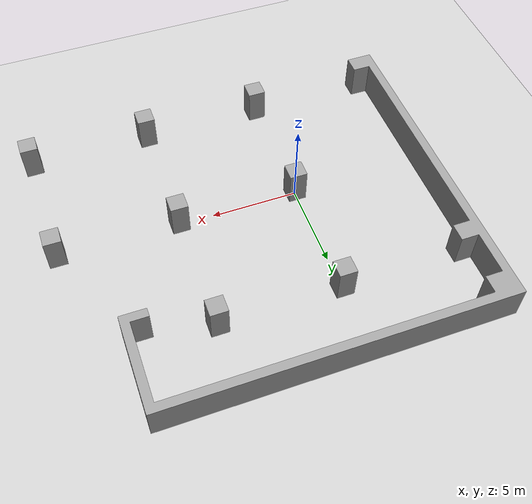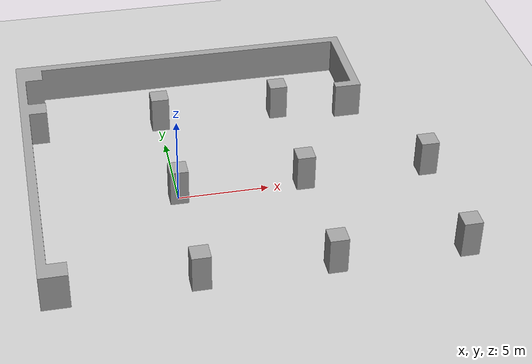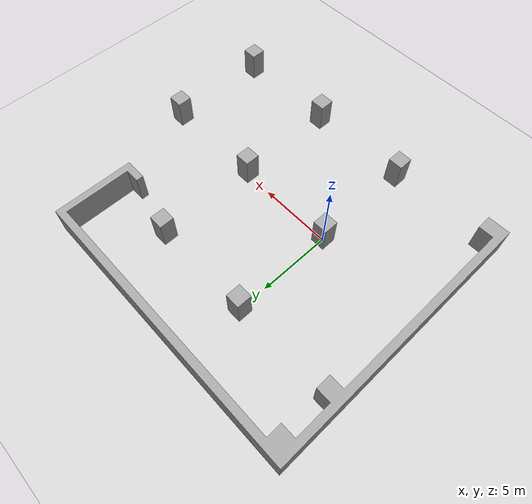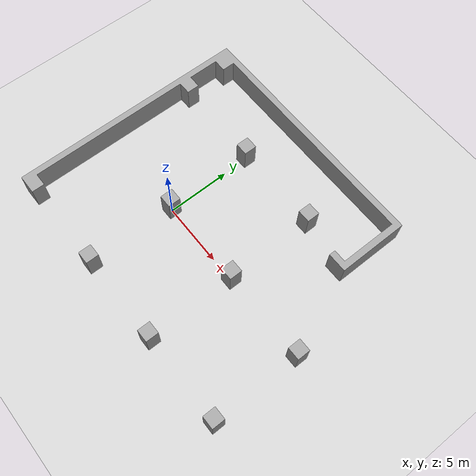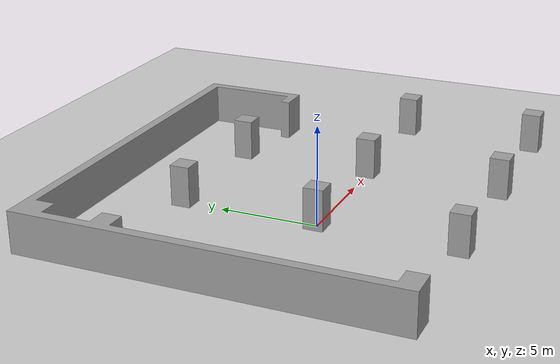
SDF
<?xml version="1.0"?>
<sdf version="1.6">
  <world name="default">

    <include>
      <uri>model://ground_plane</uri>
    </include>

    <include>
      <uri>model://sun</uri>
    </include>

    <scene>
      <shadows>false</shadows>
    </scene>

    <gui fullscreen='0'>
      <camera name='user_camera'>
        <pose frame=''>0.319654 -0.235002 9.29441 0 1.5138 0.009599</pose>
        <view_controller>orbit</view_controller>
        <projection_type>perspective</projection_type>
      </camera>
    </gui>

    <physics type="ode">
      <real_time_update_rate>1000.0</real_time_update_rate>
      <max_step_size>0.001</max_step_size>
      <real_time_factor>1</real_time_factor>
      <ode>
        <solver>
          <type>quick</type>
          <iters>150</iters>
          <precon_iters>0</precon_iters>
          <sor>1.400000</sor>
          <use_dynamic_moi_rescaling>1</use_dynamic_moi_rescaling>
        </solver>
        <constraints>
          <cfm>0.00001</cfm>
          <erp>0.2</erp>
          <contact_max_correcting_vel>2000.000000</contact_max_correcting_vel>
          <contact_surface_layer>0.01000</contact_surface_layer>
        </constraints>
      </ode>
    </physics>

    <model name="shibuya_seibu">
      <static>1</static>
      <include>
        <uri>model://shibuya_seibu</uri>
      </include>
    </model>

  </world>
</sdf>

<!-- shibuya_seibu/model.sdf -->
<sdf version="1.6">
  <model name="measurement">
    <static>true</static>
    <link name="link">
      <collision name="collision">
        <geometry>
          <mesh>
            <scale>1 1 1</scale>
            <uri>model://shibuya_seibu/meshes/shibuya_seibu.stl</uri>
          </mesh>
        </geometry>
        <surface>
          <friction>
            <ode>
              <mu>1.2</mu>
              <mu2>1.2</mu2>
            </ode>
          </friction>
        </surface>
      </collision>
      <visual name="visual">
        <geometry>
          <mesh>
            <scale>1 1 1</scale>
            <uri>model://shibuya_seibu/meshes/shibuya_seibu.dae</uri>
          </mesh>
        </geometry>
      </visual>
    </link>
  </model>
</sdf>
